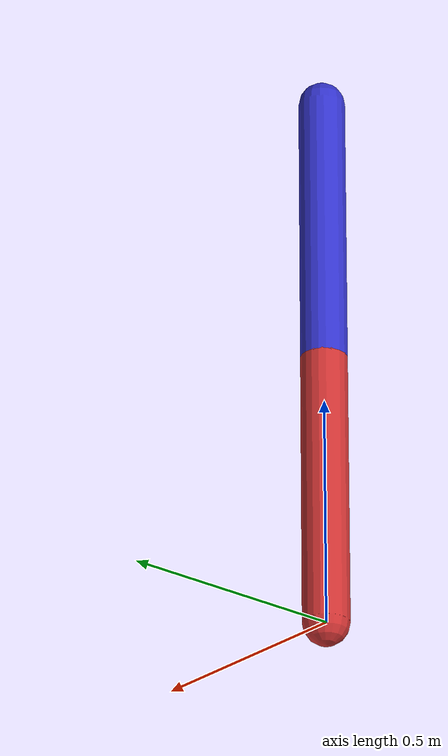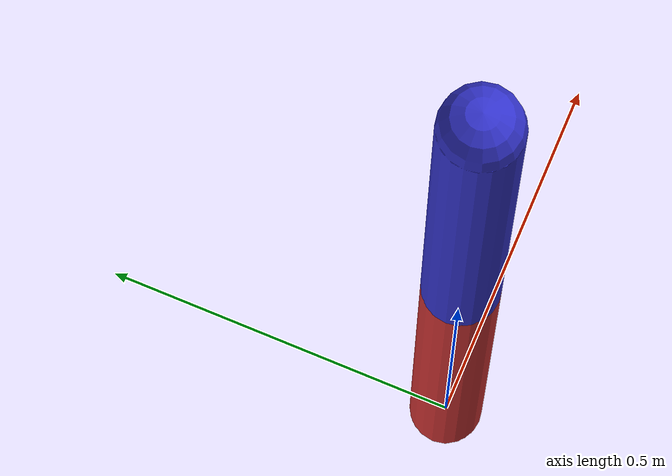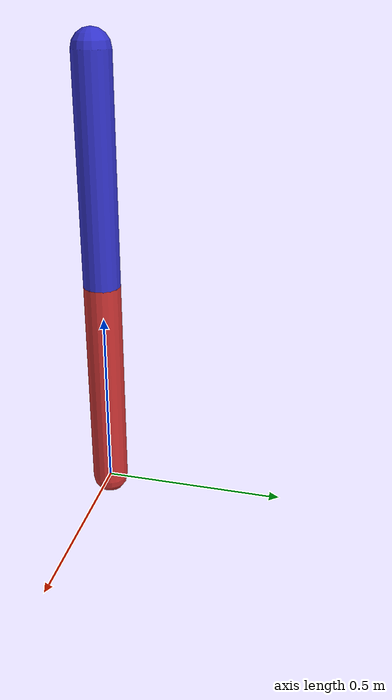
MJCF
<mujoco model="two_dof">
  <compiler angle="degree"/>
  <option timestep="0.01"/>

  <worldbody>
    <body name="base" pos="0 0 0">
      <joint name="joint1" type="hinge" axis="0 0 1" pos="0 0 0"/>
      <geom name="link1" type="capsule" size="0.05 0.3" pos="0 0 0.3" rgba="0.8 0.2 0.2 1"/>

      <body name="link2" pos="0 0 0.6">
        <joint name="joint2" type="hinge" axis="0 1 0" pos="0 0 0"/>
        <geom name="link2_geom" type="capsule" size="0.05 0.3" pos="0 0 0.3" rgba="0.2 0.2 0.8 1"/>
      </body>
    </body>
  </worldbody>

  <actuator>
    <motor joint="joint1" ctrlrange="-1 1"/>
    <motor joint="joint2" ctrlrange="-1 1"/>
  </actuator>
</mujoco>
